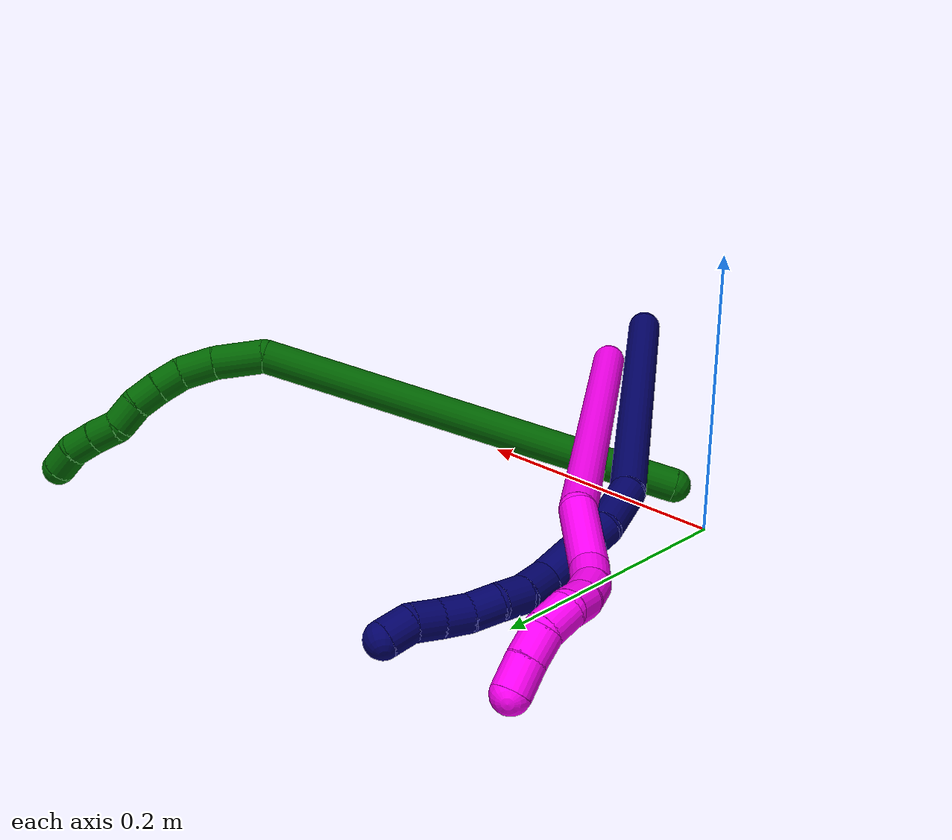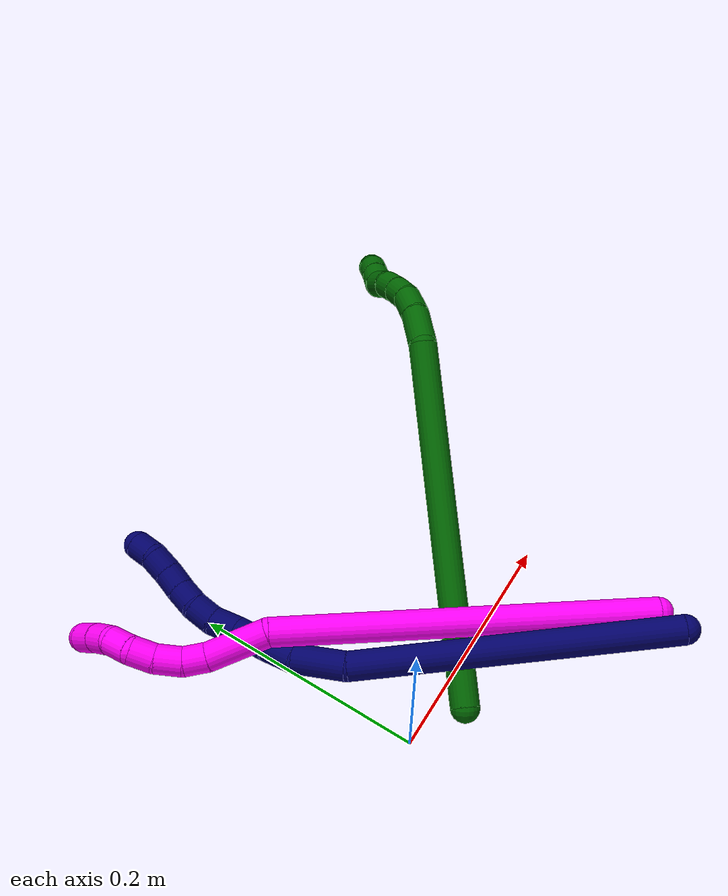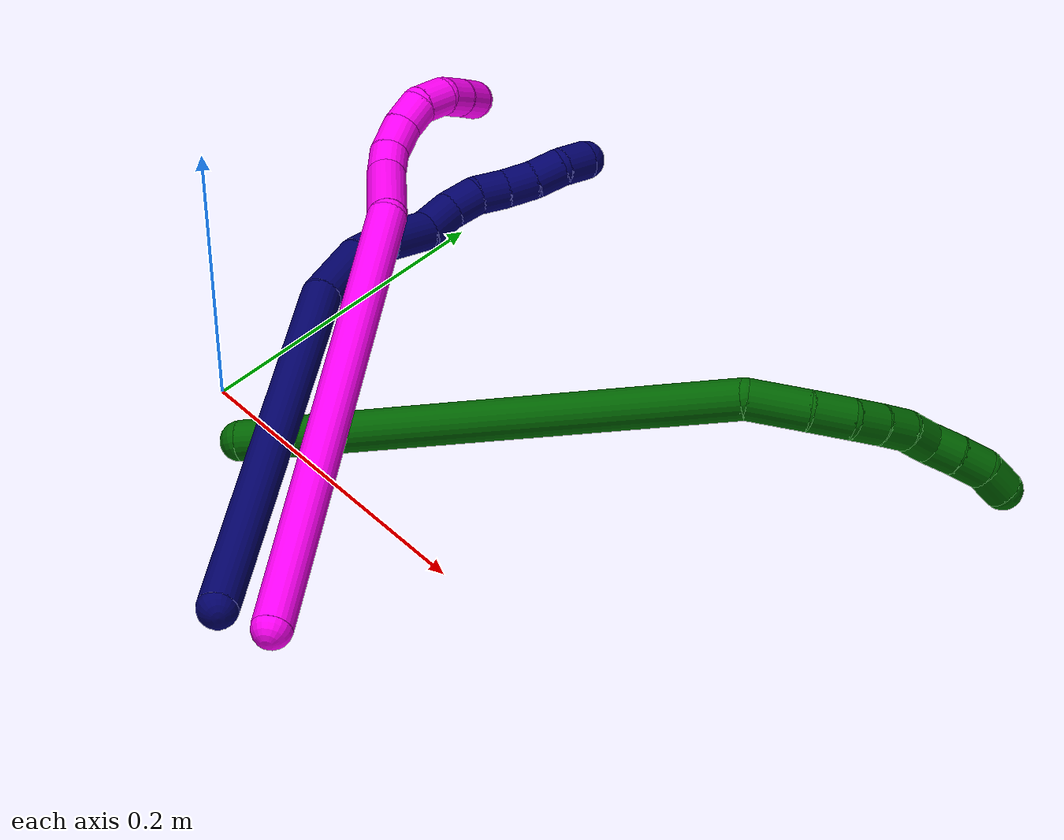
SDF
<sdf version="1.7">
 <world name="default">
  <model name="6">
   <static>0</static>
   <link name="6">
    <collision name="collision-cylinder-e_1_1_4">
     <pose>0.027058 0.041505 0.148703 -0.272183 0.173498 -0.023817</pose>
     <geometry><cylinder><radius>0.0125</radius><length>0.31348</length></cylinder></geometry>
     <surface>
      <friction><ode><mu>1.16</mu><mu2>1.16</mu2><slip1>0</slip1><slip2>0</slip2></ode></friction>
      <contact><ode><kp>1e+06</kp><kd>1</kd><max_vel>0</max_vel><min_depth>0.001</min_depth></ode></contact>
     </surface>
    </collision>
    <visual name="visual-cylinder-e_1_1_4">
     <pose>0.027058 0.041505 0.148703 -0.272183 0.173498 -0.023817</pose>
     <geometry><cylinder><radius>0.0125</radius><length>0.31348</length></cylinder></geometry>
     <material><ambient>0 0.392157 0.003922 1</ambient></material>
    </visual>
    <collision name="collision-cylinder-e_2_4_5">
     <pose>0.061997 0.093371 0.310889 -0.65527 0.434009 -0.149594</pose>
     <geometry><cylinder><radius>0.0125</radius><length>0.037484</length></cylinder></geometry>
     <surface>
      <friction><ode><mu>1.16</mu><mu2>1.16</mu2><slip1>0</slip1><slip2>0</slip2></ode></friction>
      <contact><ode><kp>1e+06</kp><kd>1</kd><max_vel>0</max_vel><min_depth>0.001</min_depth></ode></contact>
     </surface>
    </collision>
    <visual name="visual-cylinder-e_2_4_5">
     <pose>0.061997 0.093371 0.310889 -0.65527 0.434009 -0.149594</pose>
     <geometry><cylinder><radius>0.0125</radius><length>0.037484</length></cylinder></geometry>
     <material><ambient>0 0.392157 0.003922 1</ambient></material>
    </visual>
    <collision name="collision-cylinder-e_3_5_6">
     <pose>0.075157 0.112691 0.332214 -0.851713 0.417343 -0.191522</pose>
     <geometry><cylinder><radius>0.0125</radius><length>0.026045</length></cylinder></geometry>
     <surface>
      <friction><ode><mu>1.16</mu><mu2>1.16</mu2><slip1>0</slip1><slip2>0</slip2></ode></friction>
      <contact><ode><kp>1e+06</kp><kd>1</kd><max_vel>0</max_vel><min_depth>0.001</min_depth></ode></contact>
     </surface>
    </collision>
    <visual name="visual-cylinder-e_3_5_6">
     <pose>0.075157 0.112691 0.332214 -0.851713 0.417343 -0.191522</pose>
     <geometry><cylinder><radius>0.0125</radius><length>0.026045</length></cylinder></geometry>
     <material><ambient>0 0.392157 0.003922 1</ambient></material>
    </visual>
    <collision name="collision-cylinder-e_4_6_7">
     <pose>0.084062 0.130347 0.344014 -1.14366 0.362698 -0.234923</pose>
     <geometry><cylinder><radius>0.0125</radius><length>0.020445</length></cylinder></geometry>
     <surface>
      <friction><ode><mu>1.16</mu><mu2>1.16</mu2><slip1>0</slip1><slip2>0</slip2></ode></friction>
      <contact><ode><kp>1e+06</kp><kd>1</kd><max_vel>0</max_vel><min_depth>0.001</min_depth></ode></contact>
     </surface>
    </collision>
    <visual name="visual-cylinder-e_4_6_7">
     <pose>0.084062 0.130347 0.344014 -1.14366 0.362698 -0.234923</pose>
     <geometry><cylinder><radius>0.0125</radius><length>0.020445</length></cylinder></geometry>
     <material><ambient>0 0.392157 0.003922 1</ambient></material>
    </visual>
    <collision name="collision-cylinder-e_5_7_8">
     <pose>0.091255 0.148067 0.351049 -1.2423 0.357991 -0.257534</pose>
     <geometry><cylinder><radius>0.0125</radius><length>0.020352</length></cylinder></geometry>
     <surface>
      <friction><ode><mu>1.16</mu><mu2>1.16</mu2><slip1>0</slip1><slip2>0</slip2></ode></friction>
      <contact><ode><kp>1e+06</kp><kd>1</kd><max_vel>0</max_vel><min_depth>0.001</min_depth></ode></contact>
     </surface>
    </collision>
    <visual name="visual-cylinder-e_5_7_8">
     <pose>0.091255 0.148067 0.351049 -1.2423 0.357991 -0.257534</pose>
     <geometry><cylinder><radius>0.0125</radius><length>0.020352</length></cylinder></geometry>
     <material><ambient>0 0.392157 0.003922 1</ambient></material>
    </visual>
    <collision name="collision-cylinder-e_6_8_9">
     <pose>0.099671 0.166446 0.354964 -1.48122 0.476532 -0.436994</pose>
     <geometry><cylinder><radius>0.0125</radius><length>0.021148</length></cylinder></geometry>
     <surface>
      <friction><ode><mu>1.16</mu><mu2>1.16</mu2><slip1>0</slip1><slip2>0</slip2></ode></friction>
      <contact><ode><kp>1e+06</kp><kd>1</kd><max_vel>0</max_vel><min_depth>0.001</min_depth></ode></contact>
     </surface>
    </collision>
    <visual name="visual-cylinder-e_6_8_9">
     <pose>0.099671 0.166446 0.354964 -1.48122 0.476532 -0.436994</pose>
     <geometry><cylinder><radius>0.0125</radius><length>0.021148</length></cylinder></geometry>
     <material><ambient>0 0.392157 0.003922 1</ambient></material>
    </visual>
    <collision name="collision-cylinder-e_7_9_10">
     <pose>0.110457 0.182551 0.360576 -0.955258 0.622904 -0.330228</pose>
     <geometry><cylinder><radius>0.0125</radius><length>0.020348</length></cylinder></geometry>
     <surface>
      <friction><ode><mu>1.16</mu><mu2>1.16</mu2><slip1>0</slip1><slip2>0</slip2></ode></friction>
      <contact><ode><kp>1e+06</kp><kd>1</kd><max_vel>0</max_vel><min_depth>0.001</min_depth></ode></contact>
     </surface>
    </collision>
    <visual name="visual-cylinder-e_7_9_10">
     <pose>0.110457 0.182551 0.360576 -0.955258 0.622904 -0.330228</pose>
     <geometry><cylinder><radius>0.0125</radius><length>0.020348</length></cylinder></geometry>
     <material><ambient>0 0.392157 0.003922 1</ambient></material>
    </visual>
    <collision name="collision-cylinder-e_8_10_11">
     <pose>0.122507 0.196482 0.369368 -1.06051 0.638812 -0.383035</pose>
     <geometry><cylinder><radius>0.0125</radius><length>0.020511</length></cylinder></geometry>
     <surface>
      <friction><ode><mu>1.16</mu><mu2>1.16</mu2><slip1>0</slip1><slip2>0</slip2></ode></friction>
      <contact><ode><kp>1e+06</kp><kd>1</kd><max_vel>0</max_vel><min_depth>0.001</min_depth></ode></contact>
     </surface>
    </collision>
    <visual name="visual-cylinder-e_8_10_11">
     <pose>0.122507 0.196482 0.369368 -1.06051 0.638812 -0.383035</pose>
     <geometry><cylinder><radius>0.0125</radius><length>0.020511</length></cylinder></geometry>
     <material><ambient>0 0.392157 0.003922 1</ambient></material>
    </visual>
    <collision name="collision-cylinder-e_9_11_2">
     <pose>0.13593 0.210556 0.374388 -1.42689 0.809682 -0.710331</pose>
     <geometry><cylinder><radius>0.0125</radius><length>0.020186</length></cylinder></geometry>
     <surface>
      <friction><ode><mu>1.16</mu><mu2>1.16</mu2><slip1>0</slip1><slip2>0</slip2></ode></friction>
      <contact><ode><kp>1e+06</kp><kd>1</kd><max_vel>0</max_vel><min_depth>0.001</min_depth></ode></contact>
     </surface>
    </collision>
    <visual name="visual-cylinder-e_9_11_2">
     <pose>0.13593 0.210556 0.374388 -1.42689 0.809682 -0.710331</pose>
     <geometry><cylinder><radius>0.0125</radius><length>0.020186</length></cylinder></geometry>
     <material><ambient>0 0.392157 0.003922 1</ambient></material>
    </visual>
    <collision name="collision-sphere-2">
     <pose>0.143238 0.217446 0.375386 0 -0 0</pose>
     <geometry><sphere><radius>0.0125</radius></sphere></geometry>
     <surface>
      <friction><ode><mu>1.16</mu><mu2>1.16</mu2><slip1>0</slip1><slip2>0</slip2></ode></friction>
      <contact><ode><kp>1e+06</kp><kd>1</kd><max_vel>0</max_vel><min_depth>0.001</min_depth></ode></contact>
     </surface>
    </collision>
    <visual name="visual-sphere-2">
     <pose>0.143238 0.217446 0.375386 0 -0 0</pose>
     <geometry><sphere><radius>0.0125</radius></sphere></geometry>
     <material><ambient>0 0.392157 0.003922 1</ambient></material>
    </visual>
    <collision name="collision-sphere-11">
     <pose>0.128622 0.203667 0.37339 0 -0 0</pose>
     <geometry><sphere><radius>0.0125</radius></sphere></geometry>
     <surface>
      <friction><ode><mu>1.16</mu><mu2>1.16</mu2><slip1>0</slip1><slip2>0</slip2></ode></friction>
      <contact><ode><kp>1e+06</kp><kd>1</kd><max_vel>0</max_vel><min_depth>0.001</min_depth></ode></contact>
     </surface>
    </collision>
    <visual name="visual-sphere-11">
     <pose>0.128622 0.203667 0.37339 0 -0 0</pose>
     <geometry><sphere><radius>0.0125</radius></sphere></geometry>
     <material><ambient>0 0.392157 0.003922 1</ambient></material>
    </visual>
    <collision name="collision-sphere-10">
     <pose>0.116392 0.189298 0.365347 0 -0 0</pose>
     <geometry><sphere><radius>0.0125</radius></sphere></geometry>
     <surface>
      <friction><ode><mu>1.16</mu><mu2>1.16</mu2><slip1>0</slip1><slip2>0</slip2></ode></friction>
      <contact><ode><kp>1e+06</kp><kd>1</kd><max_vel>0</max_vel><min_depth>0.001</min_depth></ode></contact>
     </surface>
    </collision>
    <visual name="visual-sphere-10">
     <pose>0.116392 0.189298 0.365347 0 -0 0</pose>
     <geometry><sphere><radius>0.0125</radius></sphere></geometry>
     <material><ambient>0 0.392157 0.003922 1</ambient></material>
    </visual>
    <collision name="collision-sphere-9">
     <pose>0.104521 0.175805 0.355805 0 -0 0</pose>
     <geometry><sphere><radius>0.0125</radius></sphere></geometry>
     <surface>
      <friction><ode><mu>1.16</mu><mu2>1.16</mu2><slip1>0</slip1><slip2>0</slip2></ode></friction>
      <contact><ode><kp>1e+06</kp><kd>1</kd><max_vel>0</max_vel><min_depth>0.001</min_depth></ode></contact>
     </surface>
    </collision>
    <visual name="visual-sphere-9">
     <pose>0.104521 0.175805 0.355805 0 -0 0</pose>
     <geometry><sphere><radius>0.0125</radius></sphere></geometry>
     <material><ambient>0 0.392157 0.003922 1</ambient></material>
    </visual>
    <collision name="collision-sphere-4">
     <pose>0.054116 0.083009 0.297407 0 -0 0</pose>
     <geometry><sphere><radius>0.0125</radius></sphere></geometry>
     <surface>
      <friction><ode><mu>1.16</mu><mu2>1.16</mu2><slip1>0</slip1><slip2>0</slip2></ode></friction>
      <contact><ode><kp>1e+06</kp><kd>1</kd><max_vel>0</max_vel><min_depth>0.001</min_depth></ode></contact>
     </surface>
    </collision>
    <visual name="visual-sphere-4">
     <pose>0.054116 0.083009 0.297407 0 -0 0</pose>
     <geometry><sphere><radius>0.0125</radius></sphere></geometry>
     <material><ambient>0 0.392157 0.003922 1</ambient></material>
    </visual>
    <collision name="collision-sphere-1">
     <geometry><sphere><radius>0.0125</radius></sphere></geometry>
     <surface>
      <friction><ode><mu>1.16</mu><mu2>1.16</mu2><slip1>0</slip1><slip2>0</slip2></ode></friction>
      <contact><ode><kp>1e+06</kp><kd>1</kd><max_vel>0</max_vel><min_depth>0.001</min_depth></ode></contact>
     </surface>
    </collision>
    <visual name="visual-sphere-1">
     <geometry><sphere><radius>0.0125</radius></sphere></geometry>
     <material><ambient>0 0.392157 0.003922 1</ambient></material>
    </visual>
    <collision name="collision-sphere-8">
     <pose>0.09482 0.157088 0.354123 0 -0 0</pose>
     <geometry><sphere><radius>0.0125</radius></sphere></geometry>
     <surface>
      <friction><ode><mu>1.16</mu><mu2>1.16</mu2><slip1>0</slip1><slip2>0</slip2></ode></friction>
      <contact><ode><kp>1e+06</kp><kd>1</kd><max_vel>0</max_vel><min_depth>0.001</min_depth></ode></contact>
     </surface>
    </collision>
    <visual name="visual-sphere-8">
     <pose>0.09482 0.157088 0.354123 0 -0 0</pose>
     <geometry><sphere><radius>0.0125</radius></sphere></geometry>
     <material><ambient>0 0.392157 0.003922 1</ambient></material>
    </visual>
    <collision name="collision-sphere-5">
     <pose>0.069878 0.103733 0.324372 0 -0 0</pose>
     <geometry><sphere><radius>0.0125</radius></sphere></geometry>
     <surface>
      <friction><ode><mu>1.16</mu><mu2>1.16</mu2><slip1>0</slip1><slip2>0</slip2></ode></friction>
      <contact><ode><kp>1e+06</kp><kd>1</kd><max_vel>0</max_vel><min_depth>0.001</min_depth></ode></contact>
     </surface>
    </collision>
    <visual name="visual-sphere-5">
     <pose>0.069878 0.103733 0.324372 0 -0 0</pose>
     <geometry><sphere><radius>0.0125</radius></sphere></geometry>
     <material><ambient>0 0.392157 0.003922 1</ambient></material>
    </visual>
    <collision name="collision-sphere-6">
     <pose>0.080435 0.121648 0.340055 0 -0 0</pose>
     <geometry><sphere><radius>0.0125</radius></sphere></geometry>
     <surface>
      <friction><ode><mu>1.16</mu><mu2>1.16</mu2><slip1>0</slip1><slip2>0</slip2></ode></friction>
      <contact><ode><kp>1e+06</kp><kd>1</kd><max_vel>0</max_vel><min_depth>0.001</min_depth></ode></contact>
     </surface>
    </collision>
    <visual name="visual-sphere-6">
     <pose>0.080435 0.121648 0.340055 0 -0 0</pose>
     <geometry><sphere><radius>0.0125</radius></sphere></geometry>
     <material><ambient>0 0.392157 0.003922 1</ambient></material>
    </visual>
    <collision name="collision-sphere-7">
     <pose>0.087689 0.139046 0.347974 0 -0 0</pose>
     <geometry><sphere><radius>0.0125</radius></sphere></geometry>
     <surface>
      <friction><ode><mu>1.16</mu><mu2>1.16</mu2><slip1>0</slip1><slip2>0</slip2></ode></friction>
      <contact><ode><kp>1e+06</kp><kd>1</kd><max_vel>0</max_vel><min_depth>0.001</min_depth></ode></contact>
     </surface>
    </collision>
    <visual name="visual-sphere-7">
     <pose>0.087689 0.139046 0.347974 0 -0 0</pose>
     <geometry><sphere><radius>0.0125</radius></sphere></geometry>
     <material><ambient>0 0.392157 0.003922 1</ambient></material>
    </visual>
    <inertial>
     <pose>0.051903 0.081278 0.222154 0 -0 0</pose>
     <mass>0.5</mass>
     <inertia>
      <ixx>0.002501</ixx>
      <ixy>0</ixy>
      <ixz>0</ixz>
      <iyy>0.00245</iyy>
      <iyz>0</iyz>
      <izz>-0.001119</izz>
     </inertia>
    </inertial>
   </link>
   <pose>0.046632 -0.024484 0.011496 -0.778819 0.674077 -0.431813</pose>
  </model>
  <model name="7">
   <static>0</static>
   <link name="7">
    <collision name="collision-cylinder-e_1_1_4">
     <pose>-0.033141 0.040695 -0.124919 -2.82666 -0.247094 1.32744</pose>
     <geometry><cylinder><radius>0.0125</radius><length>0.270992</length></cylinder></geometry>
     <surface>
      <friction><ode><mu>1.16</mu><mu2>1.16</mu2><slip1>0</slip1><slip2>0</slip2></ode></friction>
      <contact><ode><kp>1e+06</kp><kd>1</kd><max_vel>0</max_vel><min_depth>0.001</min_depth></ode></contact>
     </surface>
    </collision>
    <visual name="visual-cylinder-e_1_1_4">
     <pose>-0.033141 0.040695 -0.124919 -2.82666 -0.247094 1.32744</pose>
     <geometry><cylinder><radius>0.0125</radius><length>0.270992</length></cylinder></geometry>
     <material><ambient>0.003922 0 0.403922 1</ambient></material>
    </visual>
    <collision name="collision-cylinder-e_2_4_5">
     <pose>-0.069091 0.09376 -0.268321 -2.5518 -0.125664 0.408472</pose>
     <geometry><cylinder><radius>0.0125</radius><length>0.044834</length></cylinder></geometry>
     <surface>
      <friction><ode><mu>1.16</mu><mu2>1.16</mu2><slip1>0</slip1><slip2>0</slip2></ode></friction>
      <contact><ode><kp>1e+06</kp><kd>1</kd><max_vel>0</max_vel><min_depth>0.001</min_depth></ode></contact>
     </surface>
    </collision>
    <visual name="visual-cylinder-e_2_4_5">
     <pose>-0.069091 0.09376 -0.268321 -2.5518 -0.125664 0.408472</pose>
     <geometry><cylinder><radius>0.0125</radius><length>0.044834</length></cylinder></geometry>
     <material><ambient>0.003922 0 0.403922 1</ambient></material>
    </visual>
    <collision name="collision-cylinder-e_3_5_6">
     <pose>-0.071797 0.11584 -0.295357 -2.29288 0.007981 -0.017665</pose>
     <geometry><cylinder><radius>0.0125</radius><length>0.025879</length></cylinder></geometry>
     <surface>
      <friction><ode><mu>1.16</mu><mu2>1.16</mu2><slip1>0</slip1><slip2>0</slip2></ode></friction>
      <contact><ode><kp>1e+06</kp><kd>1</kd><max_vel>0</max_vel><min_depth>0.001</min_depth></ode></contact>
     </surface>
    </collision>
    <visual name="visual-cylinder-e_3_5_6">
     <pose>-0.071797 0.11584 -0.295357 -2.29288 0.007981 -0.017665</pose>
     <geometry><cylinder><radius>0.0125</radius><length>0.025879</length></cylinder></geometry>
     <material><ambient>0.003922 0 0.403922 1</ambient></material>
    </visual>
    <collision name="collision-cylinder-e_4_6_7">
     <pose>-0.069016 0.138426 -0.314178 -2.24407 0.161185 -0.332367</pose>
     <geometry><cylinder><radius>0.0125</radius><length>0.033371</length></cylinder></geometry>
     <surface>
      <friction><ode><mu>1.16</mu><mu2>1.16</mu2><slip1>0</slip1><slip2>0</slip2></ode></friction>
      <contact><ode><kp>1e+06</kp><kd>1</kd><max_vel>0</max_vel><min_depth>0.001</min_depth></ode></contact>
     </surface>
    </collision>
    <visual name="visual-cylinder-e_4_6_7">
     <pose>-0.069016 0.138426 -0.314178 -2.24407 0.161185 -0.332367</pose>
     <geometry><cylinder><radius>0.0125</radius><length>0.033371</length></cylinder></geometry>
     <material><ambient>0.003922 0 0.403922 1</ambient></material>
    </visual>
    <collision name="collision-cylinder-e_5_7_8">
     <pose>-0.068592 0.160104 -0.332398 -2.30539 -0.187706 0.41755</pose>
     <geometry><cylinder><radius>0.0125</radius><length>0.024149</length></cylinder></geometry>
     <surface>
      <friction><ode><mu>1.16</mu><mu2>1.16</mu2><slip1>0</slip1><slip2>0</slip2></ode></friction>
      <contact><ode><kp>1e+06</kp><kd>1</kd><max_vel>0</max_vel><min_depth>0.001</min_depth></ode></contact>
     </surface>
    </collision>
    <visual name="visual-cylinder-e_5_7_8">
     <pose>-0.068592 0.160104 -0.332398 -2.30539 -0.187706 0.41755</pose>
     <geometry><cylinder><radius>0.0125</radius><length>0.024149</length></cylinder></geometry>
     <material><ambient>0.003922 0 0.403922 1</ambient></material>
    </visual>
    <collision name="collision-cylinder-e_6_8_9">
     <pose>-0.072694 0.177922 -0.344986 -2.04582 -0.180421 0.294335</pose>
     <geometry><cylinder><radius>0.0125</radius><length>0.02061</length></cylinder></geometry>
     <surface>
      <friction><ode><mu>1.16</mu><mu2>1.16</mu2><slip1>0</slip1><slip2>0</slip2></ode></friction>
      <contact><ode><kp>1e+06</kp><kd>1</kd><max_vel>0</max_vel><min_depth>0.001</min_depth></ode></contact>
     </surface>
    </collision>
    <visual name="visual-cylinder-e_6_8_9">
     <pose>-0.072694 0.177922 -0.344986 -2.04582 -0.180421 0.294335</pose>
     <geometry><cylinder><radius>0.0125</radius><length>0.02061</length></cylinder></geometry>
     <material><ambient>0.003922 0 0.403922 1</ambient></material>
    </visual>
    <collision name="collision-cylinder-e_7_9_10">
     <pose>-0.073963 0.196405 -0.35304 -1.91724 0.057515 -0.081888</pose>
     <geometry><cylinder><radius>0.0125</radius><length>0.020164</length></cylinder></geometry>
     <surface>
      <friction><ode><mu>1.16</mu><mu2>1.16</mu2><slip1>0</slip1><slip2>0</slip2></ode></friction>
      <contact><ode><kp>1e+06</kp><kd>1</kd><max_vel>0</max_vel><min_depth>0.001</min_depth></ode></contact>
     </surface>
    </collision>
    <visual name="visual-cylinder-e_7_9_10">
     <pose>-0.073963 0.196405 -0.35304 -1.91724 0.057515 -0.081888</pose>
     <geometry><cylinder><radius>0.0125</radius><length>0.020164</length></cylinder></geometry>
     <material><ambient>0.003922 0 0.403922 1</ambient></material>
    </visual>
    <collision name="collision-cylinder-e_8_10_11">
     <pose>-0.074079 0.215535 -0.358937 -1.82192 -0.069611 0.0897</pose>
     <geometry><cylinder><radius>0.0125</radius><length>0.020001</length></cylinder></geometry>
     <surface>
      <friction><ode><mu>1.16</mu><mu2>1.16</mu2><slip1>0</slip1><slip2>0</slip2></ode></friction>
      <contact><ode><kp>1e+06</kp><kd>1</kd><max_vel>0</max_vel><min_depth>0.001</min_depth></ode></contact>
     </surface>
    </collision>
    <visual name="visual-cylinder-e_8_10_11">
     <pose>-0.074079 0.215535 -0.358937 -1.82192 -0.069611 0.0897</pose>
     <geometry><cylinder><radius>0.0125</radius><length>0.020001</length></cylinder></geometry>
     <material><ambient>0.003922 0 0.403922 1</ambient></material>
    </visual>
    <collision name="collision-cylinder-e_9_11_12">
     <pose>-0.076663 0.23458 -0.364319 -1.87088 -0.189989 0.257019</pose>
     <geometry><cylinder><radius>0.0125</radius><length>0.02</length></cylinder></geometry>
     <surface>
      <friction><ode><mu>1.16</mu><mu2>1.16</mu2><slip1>0</slip1><slip2>0</slip2></ode></friction>
      <contact><ode><kp>1e+06</kp><kd>1</kd><max_vel>0</max_vel><min_depth>0.001</min_depth></ode></contact>
     </surface>
    </collision>
    <visual name="visual-cylinder-e_9_11_12">
     <pose>-0.076663 0.23458 -0.364319 -1.87088 -0.189989 0.257019</pose>
     <geometry><cylinder><radius>0.0125</radius><length>0.02</length></cylinder></geometry>
     <material><ambient>0.003922 0 0.403922 1</ambient></material>
    </visual>
    <collision name="collision-cylinder-e_10_12_2">
     <pose>-0.077644 0.252482 -0.372376 -2.11475 0.090917 -0.161003</pose>
     <geometry><cylinder><radius>0.0125</radius><length>0.02</length></cylinder></geometry>
     <surface>
      <friction><ode><mu>1.16</mu><mu2>1.16</mu2><slip1>0</slip1><slip2>0</slip2></ode></friction>
      <contact><ode><kp>1e+06</kp><kd>1</kd><max_vel>0</max_vel><min_depth>0.001</min_depth></ode></contact>
     </surface>
    </collision>
    <visual name="visual-cylinder-e_10_12_2">
     <pose>-0.077644 0.252482 -0.372376 -2.11475 0.090917 -0.161003</pose>
     <geometry><cylinder><radius>0.0125</radius><length>0.02</length></cylinder></geometry>
     <material><ambient>0.003922 0 0.403922 1</ambient></material>
    </visual>
    <collision name="collision-sphere-2">
     <pose>-0.076736 0.261004 -0.377529 0 -0 0</pose>
     <geometry><sphere><radius>0.0125</radius></sphere></geometry>
     <surface>
      <friction><ode><mu>1.16</mu><mu2>1.16</mu2><slip1>0</slip1><slip2>0</slip2></ode></friction>
      <contact><ode><kp>1e+06</kp><kd>1</kd><max_vel>0</max_vel><min_depth>0.001</min_depth></ode></contact>
     </surface>
    </collision>
    <visual name="visual-sphere-2">
     <pose>-0.076736 0.261004 -0.377529 0 -0 0</pose>
     <geometry><sphere><radius>0.0125</radius></sphere></geometry>
     <material><ambient>0.003922 0 0.403922 1</ambient></material>
    </visual>
    <collision name="collision-sphere-12">
     <pose>-0.078552 0.243961 -0.367222 0 -0 0</pose>
     <geometry><sphere><radius>0.0125</radius></sphere></geometry>
     <surface>
      <friction><ode><mu>1.16</mu><mu2>1.16</mu2><slip1>0</slip1><slip2>0</slip2></ode></friction>
      <contact><ode><kp>1e+06</kp><kd>1</kd><max_vel>0</max_vel><min_depth>0.001</min_depth></ode></contact>
     </surface>
    </collision>
    <visual name="visual-sphere-12">
     <pose>-0.078552 0.243961 -0.367222 0 -0 0</pose>
     <geometry><sphere><radius>0.0125</radius></sphere></geometry>
     <material><ambient>0.003922 0 0.403922 1</ambient></material>
    </visual>
    <collision name="collision-sphere-11">
     <pose>-0.074775 0.225199 -0.361416 0 -0 0</pose>
     <geometry><sphere><radius>0.0125</radius></sphere></geometry>
     <surface>
      <friction><ode><mu>1.16</mu><mu2>1.16</mu2><slip1>0</slip1><slip2>0</slip2></ode></friction>
      <contact><ode><kp>1e+06</kp><kd>1</kd><max_vel>0</max_vel><min_depth>0.001</min_depth></ode></contact>
     </surface>
    </collision>
    <visual name="visual-sphere-11">
     <pose>-0.074775 0.225199 -0.361416 0 -0 0</pose>
     <geometry><sphere><radius>0.0125</radius></sphere></geometry>
     <material><ambient>0.003922 0 0.403922 1</ambient></material>
    </visual>
    <collision name="collision-sphere-10">
     <pose>-0.073384 0.205872 -0.356458 0 -0 0</pose>
     <geometry><sphere><radius>0.0125</radius></sphere></geometry>
     <surface>
      <friction><ode><mu>1.16</mu><mu2>1.16</mu2><slip1>0</slip1><slip2>0</slip2></ode></friction>
      <contact><ode><kp>1e+06</kp><kd>1</kd><max_vel>0</max_vel><min_depth>0.001</min_depth></ode></contact>
     </surface>
    </collision>
    <visual name="visual-sphere-10">
     <pose>-0.073384 0.205872 -0.356458 0 -0 0</pose>
     <geometry><sphere><radius>0.0125</radius></sphere></geometry>
     <material><ambient>0.003922 0 0.403922 1</ambient></material>
    </visual>
    <collision name="collision-sphere-9">
     <pose>-0.074543 0.186937 -0.349622 0 -0 0</pose>
     <geometry><sphere><radius>0.0125</radius></sphere></geometry>
     <surface>
      <friction><ode><mu>1.16</mu><mu2>1.16</mu2><slip1>0</slip1><slip2>0</slip2></ode></friction>
      <contact><ode><kp>1e+06</kp><kd>1</kd><max_vel>0</max_vel><min_depth>0.001</min_depth></ode></contact>
     </surface>
    </collision>
    <visual name="visual-sphere-9">
     <pose>-0.074543 0.186937 -0.349622 0 -0 0</pose>
     <geometry><sphere><radius>0.0125</radius></sphere></geometry>
     <material><ambient>0.003922 0 0.403922 1</ambient></material>
    </visual>
    <collision name="collision-sphere-4">
     <pose>-0.066281 0.081391 -0.249838 0 -0 0</pose>
     <geometry><sphere><radius>0.0125</radius></sphere></geometry>
     <surface>
      <friction><ode><mu>1.16</mu><mu2>1.16</mu2><slip1>0</slip1><slip2>0</slip2></ode></friction>
      <contact><ode><kp>1e+06</kp><kd>1</kd><max_vel>0</max_vel><min_depth>0.001</min_depth></ode></contact>
     </surface>
    </collision>
    <visual name="visual-sphere-4">
     <pose>-0.066281 0.081391 -0.249838 0 -0 0</pose>
     <geometry><sphere><radius>0.0125</radius></sphere></geometry>
     <material><ambient>0.003922 0 0.403922 1</ambient></material>
    </visual>
    <collision name="collision-sphere-1">
     <geometry><sphere><radius>0.0125</radius></sphere></geometry>
     <surface>
      <friction><ode><mu>1.16</mu><mu2>1.16</mu2><slip1>0</slip1><slip2>0</slip2></ode></friction>
      <contact><ode><kp>1e+06</kp><kd>1</kd><max_vel>0</max_vel><min_depth>0.001</min_depth></ode></contact>
     </surface>
    </collision>
    <visual name="visual-sphere-1">
     <geometry><sphere><radius>0.0125</radius></sphere></geometry>
     <material><ambient>0.003922 0 0.403922 1</ambient></material>
    </visual>
    <collision name="collision-sphere-8">
     <pose>-0.070845 0.168907 -0.34035 0 -0 0</pose>
     <geometry><sphere><radius>0.0125</radius></sphere></geometry>
     <surface>
      <friction><ode><mu>1.16</mu><mu2>1.16</mu2><slip1>0</slip1><slip2>0</slip2></ode></friction>
      <contact><ode><kp>1e+06</kp><kd>1</kd><max_vel>0</max_vel><min_depth>0.001</min_depth></ode></contact>
     </surface>
    </collision>
    <visual name="visual-sphere-8">
     <pose>-0.070845 0.168907 -0.34035 0 -0 0</pose>
     <geometry><sphere><radius>0.0125</radius></sphere></geometry>
     <material><ambient>0.003922 0 0.403922 1</ambient></material>
    </visual>
    <collision name="collision-sphere-5">
     <pose>-0.071901 0.10613 -0.286804 0 -0 0</pose>
     <geometry><sphere><radius>0.0125</radius></sphere></geometry>
     <surface>
      <friction><ode><mu>1.16</mu><mu2>1.16</mu2><slip1>0</slip1><slip2>0</slip2></ode></friction>
      <contact><ode><kp>1e+06</kp><kd>1</kd><max_vel>0</max_vel><min_depth>0.001</min_depth></ode></contact>
     </surface>
    </collision>
    <visual name="visual-sphere-5">
     <pose>-0.071901 0.10613 -0.286804 0 -0 0</pose>
     <geometry><sphere><radius>0.0125</radius></sphere></geometry>
     <material><ambient>0.003922 0 0.403922 1</ambient></material>
    </visual>
    <collision name="collision-sphere-6">
     <pose>-0.071694 0.12555 -0.303909 0 -0 0</pose>
     <geometry><sphere><radius>0.0125</radius></sphere></geometry>
     <surface>
      <friction><ode><mu>1.16</mu><mu2>1.16</mu2><slip1>0</slip1><slip2>0</slip2></ode></friction>
      <contact><ode><kp>1e+06</kp><kd>1</kd><max_vel>0</max_vel><min_depth>0.001</min_depth></ode></contact>
     </surface>
    </collision>
    <visual name="visual-sphere-6">
     <pose>-0.071694 0.12555 -0.303909 0 -0 0</pose>
     <geometry><sphere><radius>0.0125</radius></sphere></geometry>
     <material><ambient>0.003922 0 0.403922 1</ambient></material>
    </visual>
    <collision name="collision-sphere-7">
     <pose>-0.066338 0.151301 -0.324447 0 -0 0</pose>
     <geometry><sphere><radius>0.0125</radius></sphere></geometry>
     <surface>
      <friction><ode><mu>1.16</mu><mu2>1.16</mu2><slip1>0</slip1><slip2>0</slip2></ode></friction>
      <contact><ode><kp>1e+06</kp><kd>1</kd><max_vel>0</max_vel><min_depth>0.001</min_depth></ode></contact>
     </surface>
    </collision>
    <visual name="visual-sphere-7">
     <pose>-0.066338 0.151301 -0.324447 0 -0 0</pose>
     <geometry><sphere><radius>0.0125</radius></sphere></geometry>
     <material><ambient>0.003922 0 0.403922 1</ambient></material>
    </visual>
    <inertial>
     <pose>-0.050907 0.096789 -0.216358 0 -0 0</pose>
     <mass>0.5</mass>
     <inertia>
      <ixx>0.001982</ixx>
      <ixy>0</ixy>
      <ixz>0</ixz>
      <iyy>0.00132</iyy>
      <iyz>0</iyz>
      <izz>-0.00014</izz>
     </inertia>
    </inertial>
   </link>
   <pose>0.175957 -0.147346 0.071877 0.147895 1.19346 -0.484313</pose>
  </model>
  <model name="10">
   <static>0</static>
   <link name="10">
    <collision name="collision-cylinder-e_1_1_4">
     <pose>-0.003777 0.004122 0.159804 -0.025791 -0.023622 0.000305</pose>
     <geometry><cylinder><radius>0.0125</radius><length>0.319803</length></cylinder></geometry>
     <surface>
      <friction><ode><mu>1.16</mu><mu2>1.16</mu2><slip1>0</slip1><slip2>0</slip2></ode></friction>
      <contact><ode><kp>1e+06</kp><kd>1</kd><max_vel>0</max_vel><min_depth>0.001</min_depth></ode></contact>
     </surface>
    </collision>
    <visual name="visual-cylinder-e_1_1_4">
     <pose>-0.003777 0.004122 0.159804 -0.025791 -0.023622 0.000305</pose>
     <geometry><cylinder><radius>0.0125</radius><length>0.319803</length></cylinder></geometry>
     <material><ambient>1 0 0.964706 1</ambient></material>
    </visual>
    <collision name="collision-cylinder-e_2_4_5">
     <pose>-0.014156 0.017502 0.343973 -0.363102 -0.248076 0.045767</pose>
     <geometry><cylinder><radius>0.0125</radius><length>0.053776</length></cylinder></geometry>
     <surface>
      <friction><ode><mu>1.16</mu><mu2>1.16</mu2><slip1>0</slip1><slip2>0</slip2></ode></friction>
      <contact><ode><kp>1e+06</kp><kd>1</kd><max_vel>0</max_vel><min_depth>0.001</min_depth></ode></contact>
     </surface>
    </collision>
    <visual name="visual-cylinder-e_2_4_5">
     <pose>-0.014156 0.017502 0.343973 -0.363102 -0.248076 0.045767</pose>
     <geometry><cylinder><radius>0.0125</radius><length>0.053776</length></cylinder></geometry>
     <material><ambient>1 0 0.964706 1</ambient></material>
    </visual>
    <collision name="collision-cylinder-e_3_5_6">
     <pose>-0.022214 0.027792 0.378498 -0.101198 -0.141646 0.007185</pose>
     <geometry><cylinder><radius>0.0125</radius><length>0.02063</length></cylinder></geometry>
     <surface>
      <friction><ode><mu>1.16</mu><mu2>1.16</mu2><slip1>0</slip1><slip2>0</slip2></ode></friction>
      <contact><ode><kp>1e+06</kp><kd>1</kd><max_vel>0</max_vel><min_depth>0.001</min_depth></ode></contact>
     </surface>
    </collision>
    <visual name="visual-cylinder-e_3_5_6">
     <pose>-0.022214 0.027792 0.378498 -0.101198 -0.141646 0.007185</pose>
     <geometry><cylinder><radius>0.0125</radius><length>0.02063</length></cylinder></geometry>
     <material><ambient>1 0 0.964706 1</ambient></material>
    </visual>
    <collision name="collision-cylinder-e_4_6_7">
     <pose>-0.022149 0.028555 0.399961 0.023733 0.133719 0.001589</pose>
     <geometry><cylinder><radius>0.0125</radius><length>0.022817</length></cylinder></geometry>
     <surface>
      <friction><ode><mu>1.16</mu><mu2>1.16</mu2><slip1>0</slip1><slip2>0</slip2></ode></friction>
      <contact><ode><kp>1e+06</kp><kd>1</kd><max_vel>0</max_vel><min_depth>0.001</min_depth></ode></contact>
     </surface>
    </collision>
    <visual name="visual-cylinder-e_4_6_7">
     <pose>-0.022149 0.028555 0.399961 0.023733 0.133719 0.001589</pose>
     <geometry><cylinder><radius>0.0125</radius><length>0.022817</length></cylinder></geometry>
     <material><ambient>1 0 0.964706 1</ambient></material>
    </visual>
    <collision name="collision-cylinder-e_5_7_8">
     <pose>-0.017086 0.027511 0.420784 0.081272 0.355137 0.014593</pose>
     <geometry><cylinder><radius>0.0125</radius><length>0.020373</length></cylinder></geometry>
     <surface>
      <friction><ode><mu>1.16</mu><mu2>1.16</mu2><slip1>0</slip1><slip2>0</slip2></ode></friction>
      <contact><ode><kp>1e+06</kp><kd>1</kd><max_vel>0</max_vel><min_depth>0.001</min_depth></ode></contact>
     </surface>
    </collision>
    <visual name="visual-cylinder-e_5_7_8">
     <pose>-0.017086 0.027511 0.420784 0.081272 0.355137 0.014593</pose>
     <geometry><cylinder><radius>0.0125</radius><length>0.020373</length></cylinder></geometry>
     <material><ambient>1 0 0.964706 1</ambient></material>
    </visual>
    <collision name="collision-cylinder-e_6_8_9">
     <pose>-0.007999 0.030297 0.438619 -0.404576 0.549879 -0.115578</pose>
     <geometry><cylinder><radius>0.0125</radius><length>0.021221</length></cylinder></geometry>
     <surface>
      <friction><ode><mu>1.16</mu><mu2>1.16</mu2><slip1>0</slip1><slip2>0</slip2></ode></friction>
      <contact><ode><kp>1e+06</kp><kd>1</kd><max_vel>0</max_vel><min_depth>0.001</min_depth></ode></contact>
     </surface>
    </collision>
    <visual name="visual-cylinder-e_6_8_9">
     <pose>-0.007999 0.030297 0.438619 -0.404576 0.549879 -0.115578</pose>
     <geometry><cylinder><radius>0.0125</radius><length>0.021221</length></cylinder></geometry>
     <material><ambient>1 0 0.964706 1</ambient></material>
    </visual>
    <collision name="collision-cylinder-e_7_9_10">
     <pose>0.001215 0.040647 0.453352 -0.813603 0.374294 -0.162807</pose>
     <geometry><cylinder><radius>0.0125</radius><length>0.020072</length></cylinder></geometry>
     <surface>
      <friction><ode><mu>1.16</mu><mu2>1.16</mu2><slip1>0</slip1><slip2>0</slip2></ode></friction>
      <contact><ode><kp>1e+06</kp><kd>1</kd><max_vel>0</max_vel><min_depth>0.001</min_depth></ode></contact>
     </surface>
    </collision>
    <visual name="visual-cylinder-e_7_9_10">
     <pose>0.001215 0.040647 0.453352 -0.813603 0.374294 -0.162807</pose>
     <geometry><cylinder><radius>0.0125</radius><length>0.020072</length></cylinder></geometry>
     <material><ambient>1 0 0.964706 1</ambient></material>
    </visual>
    <collision name="collision-cylinder-e_8_10_2">
     <pose>0.007962 0.055074 0.466526 -0.846462 0.293131 -0.1328</pose>
     <geometry><cylinder><radius>0.0125</radius><length>0.021308</length></cylinder></geometry>
     <surface>
      <friction><ode><mu>1.16</mu><mu2>1.16</mu2><slip1>0</slip1><slip2>0</slip2></ode></friction>
      <contact><ode><kp>1e+06</kp><kd>1</kd><max_vel>0</max_vel><min_depth>0.001</min_depth></ode></contact>
     </surface>
    </collision>
    <visual name="visual-cylinder-e_8_10_2">
     <pose>0.007962 0.055074 0.466526 -0.846462 0.293131 -0.1328</pose>
     <geometry><cylinder><radius>0.0125</radius><length>0.021308</length></cylinder></geometry>
     <material><ambient>1 0 0.964706 1</ambient></material>
    </visual>
    <collision name="collision-sphere-2">
     <pose>0.011041 0.062713 0.473285 0 -0 0</pose>
     <geometry><sphere><radius>0.0125</radius></sphere></geometry>
     <surface>
      <friction><ode><mu>1.16</mu><mu2>1.16</mu2><slip1>0</slip1><slip2>0</slip2></ode></friction>
      <contact><ode><kp>1e+06</kp><kd>1</kd><max_vel>0</max_vel><min_depth>0.001</min_depth></ode></contact>
     </surface>
    </collision>
    <visual name="visual-sphere-2">
     <pose>0.011041 0.062713 0.473285 0 -0 0</pose>
     <geometry><sphere><radius>0.0125</radius></sphere></geometry>
     <material><ambient>1 0 0.964706 1</ambient></material>
    </visual>
    <collision name="collision-sphere-10">
     <pose>0.004884 0.047436 0.459768 0 -0 0</pose>
     <geometry><sphere><radius>0.0125</radius></sphere></geometry>
     <surface>
      <friction><ode><mu>1.16</mu><mu2>1.16</mu2><slip1>0</slip1><slip2>0</slip2></ode></friction>
      <contact><ode><kp>1e+06</kp><kd>1</kd><max_vel>0</max_vel><min_depth>0.001</min_depth></ode></contact>
     </surface>
    </collision>
    <visual name="visual-sphere-10">
     <pose>0.004884 0.047436 0.459768 0 -0 0</pose>
     <geometry><sphere><radius>0.0125</radius></sphere></geometry>
     <material><ambient>1 0 0.964706 1</ambient></material>
    </visual>
    <collision name="collision-sphere-9">
     <pose>-0.002455 0.033858 0.446935 0 -0 0</pose>
     <geometry><sphere><radius>0.0125</radius></sphere></geometry>
     <surface>
      <friction><ode><mu>1.16</mu><mu2>1.16</mu2><slip1>0</slip1><slip2>0</slip2></ode></friction>
      <contact><ode><kp>1e+06</kp><kd>1</kd><max_vel>0</max_vel><min_depth>0.001</min_depth></ode></contact>
     </surface>
    </collision>
    <visual name="visual-sphere-9">
     <pose>-0.002455 0.033858 0.446935 0 -0 0</pose>
     <geometry><sphere><radius>0.0125</radius></sphere></geometry>
     <material><ambient>1 0 0.964706 1</ambient></material>
    </visual>
    <collision name="collision-sphere-4">
     <pose>-0.007554 0.008245 0.319607 0 -0 0</pose>
     <geometry><sphere><radius>0.0125</radius></sphere></geometry>
     <surface>
      <friction><ode><mu>1.16</mu><mu2>1.16</mu2><slip1>0</slip1><slip2>0</slip2></ode></friction>
      <contact><ode><kp>1e+06</kp><kd>1</kd><max_vel>0</max_vel><min_depth>0.001</min_depth></ode></contact>
     </surface>
    </collision>
    <visual name="visual-sphere-4">
     <pose>-0.007554 0.008245 0.319607 0 -0 0</pose>
     <geometry><sphere><radius>0.0125</radius></sphere></geometry>
     <material><ambient>1 0 0.964706 1</ambient></material>
    </visual>
    <collision name="collision-sphere-1">
     <geometry><sphere><radius>0.0125</radius></sphere></geometry>
     <surface>
      <friction><ode><mu>1.16</mu><mu2>1.16</mu2><slip1>0</slip1><slip2>0</slip2></ode></friction>
      <contact><ode><kp>1e+06</kp><kd>1</kd><max_vel>0</max_vel><min_depth>0.001</min_depth></ode></contact>
     </surface>
    </collision>
    <visual name="visual-sphere-1">
     <geometry><sphere><radius>0.0125</radius></sphere></geometry>
     <material><ambient>1 0 0.964706 1</ambient></material>
    </visual>
    <collision name="collision-sphere-8">
     <pose>-0.013544 0.026736 0.430303 0 -0 0</pose>
     <geometry><sphere><radius>0.0125</radius></sphere></geometry>
     <surface>
      <friction><ode><mu>1.16</mu><mu2>1.16</mu2><slip1>0</slip1><slip2>0</slip2></ode></friction>
      <contact><ode><kp>1e+06</kp><kd>1</kd><max_vel>0</max_vel><min_depth>0.001</min_depth></ode></contact>
     </surface>
    </collision>
    <visual name="visual-sphere-8">
     <pose>-0.013544 0.026736 0.430303 0 -0 0</pose>
     <geometry><sphere><radius>0.0125</radius></sphere></geometry>
     <material><ambient>1 0 0.964706 1</ambient></material>
    </visual>
    <collision name="collision-sphere-5">
     <pose>-0.020758 0.02676 0.368338 0 -0 0</pose>
     <geometry><sphere><radius>0.0125</radius></sphere></geometry>
     <surface>
      <friction><ode><mu>1.16</mu><mu2>1.16</mu2><slip1>0</slip1><slip2>0</slip2></ode></friction>
      <contact><ode><kp>1e+06</kp><kd>1</kd><max_vel>0</max_vel><min_depth>0.001</min_depth></ode></contact>
     </surface>
    </collision>
    <visual name="visual-sphere-5">
     <pose>-0.020758 0.02676 0.368338 0 -0 0</pose>
     <geometry><sphere><radius>0.0125</radius></sphere></geometry>
     <material><ambient>1 0 0.964706 1</ambient></material>
    </visual>
    <collision name="collision-sphere-6">
     <pose>-0.02367 0.028823 0.388657 0 -0 0</pose>
     <geometry><sphere><radius>0.0125</radius></sphere></geometry>
     <surface>
      <friction><ode><mu>1.16</mu><mu2>1.16</mu2><slip1>0</slip1><slip2>0</slip2></ode></friction>
      <contact><ode><kp>1e+06</kp><kd>1</kd><max_vel>0</max_vel><min_depth>0.001</min_depth></ode></contact>
     </surface>
    </collision>
    <visual name="visual-sphere-6">
     <pose>-0.02367 0.028823 0.388657 0 -0 0</pose>
     <geometry><sphere><radius>0.0125</radius></sphere></geometry>
     <material><ambient>1 0 0.964706 1</ambient></material>
    </visual>
    <collision name="collision-sphere-7">
     <pose>-0.020628 0.028287 0.411265 0 -0 0</pose>
     <geometry><sphere><radius>0.0125</radius></sphere></geometry>
     <surface>
      <friction><ode><mu>1.16</mu><mu2>1.16</mu2><slip1>0</slip1><slip2>0</slip2></ode></friction>
      <contact><ode><kp>1e+06</kp><kd>1</kd><max_vel>0</max_vel><min_depth>0.001</min_depth></ode></contact>
     </surface>
    </collision>
    <visual name="visual-sphere-7">
     <pose>-0.020628 0.028287 0.411265 0 -0 0</pose>
     <geometry><sphere><radius>0.0125</radius></sphere></geometry>
     <material><ambient>1 0 0.964706 1</ambient></material>
    </visual>
    <inertial>
     <pose>-0.006513 0.013355 0.246917 0 -0 0</pose>
     <mass>0.5</mass>
     <inertia>
      <ixx>0.002763</ixx>
      <ixy>0</ixy>
      <ixz>0</ixz>
      <iyy>0.002766</iyy>
      <iyz>0</iyz>
      <izz>2.4e-05</izz>
     </inertia>
    </inertial>
   </link>
   <pose>0.191009 -0.122051 0.045614 -1.49783 -0.027721 0.605825</pose>
  </model>
 </world>
</sdf>
